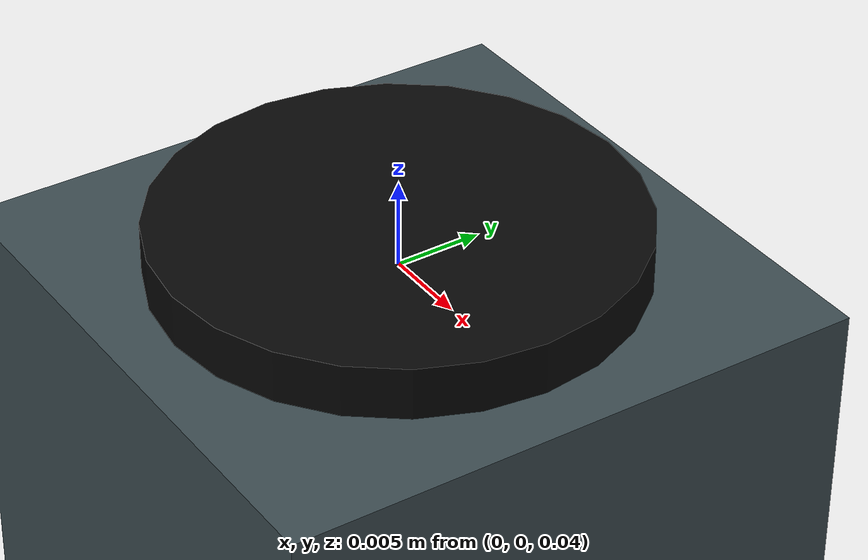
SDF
<?xml version="1.0"?>
<sdf version="1.9">
  <model name="hole_fixture">
    <static>true</static>
    <link name="fixture_link">
      <!-- Low 180 mm square nest placed directly on the table; the central opening clears the 27 mm hole marker. -->
      <pose>0 0 0.02 0 0 0</pose>
      <collision name="hole_fixture_collision">
        <pose>0 0.054 0 0 0 0</pose>
        <geometry><box><size>0.18 0.072 0.04</size></box></geometry>
      </collision>
      <collision name="fixture_rear_collision">
        <pose>0 -0.054 0 0 0 0</pose>
        <geometry><box><size>0.18 0.072 0.04</size></box></geometry>
      </collision>
      <collision name="fixture_left_collision">
        <pose>-0.054 0 0 0 0 0</pose>
        <geometry><box><size>0.072 0.036 0.04</size></box></geometry>
      </collision>
      <collision name="fixture_right_collision">
        <pose>0.054 0 0 0 0 0</pose>
        <geometry><box><size>0.072 0.036 0.04</size></box></geometry>
      </collision>
      <sensor name="hole_contact_sensor" type="contact">
        <always_on>true</always_on>
        <update_rate>100.0</update_rate>
        <topic>/gazebo/contacts/hole</topic>
        <contact>
          <collision>hole_fixture_collision</collision>
          <collision>fixture_rear_collision</collision>
          <collision>fixture_left_collision</collision>
          <collision>fixture_right_collision</collision>
        </contact>
      </sensor>
      <visual name="fixture_visual">
        <geometry><box><size>0.18 0.18 0.04</size></box></geometry>
        <material>
          <ambient>0.18 0.22 0.24 1</ambient>
          <diffuse>0.24 0.30 0.32 1</diffuse>
          <specular>0.20 0.22 0.22 1</specular>
        </material>
      </visual>
      <visual name="fixture_socket_visual">
        <pose>0 0 0.021 0 0 0</pose>
        <geometry><cylinder><radius>0.0135</radius><length>0.004</length></cylinder></geometry>
        <material>
          <ambient>0.02 0.02 0.02 1</ambient>
          <diffuse>0.03 0.03 0.03 1</diffuse>
        </material>
      </visual>
    </link>
  </model>
</sdf>
